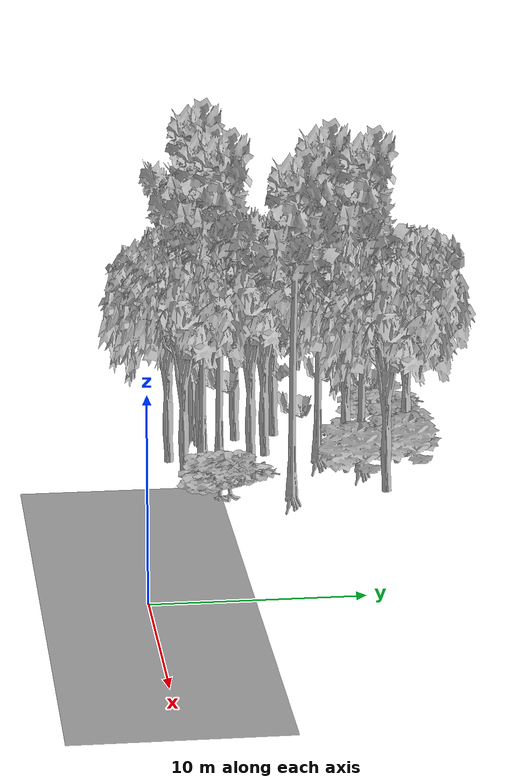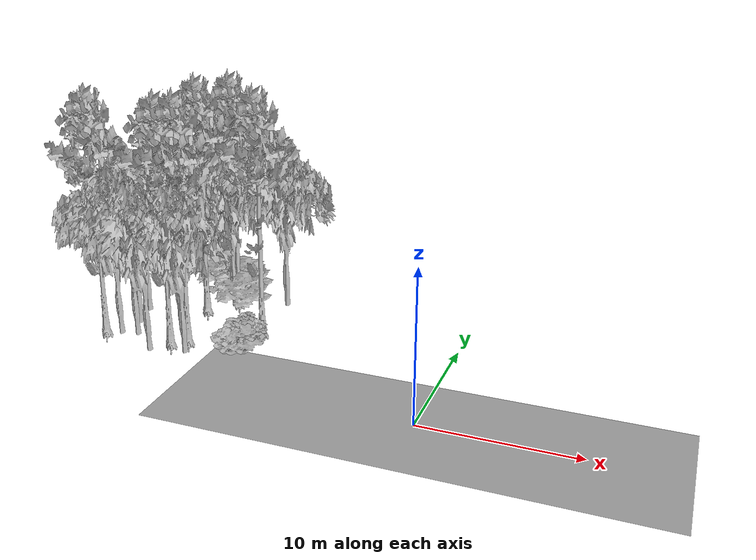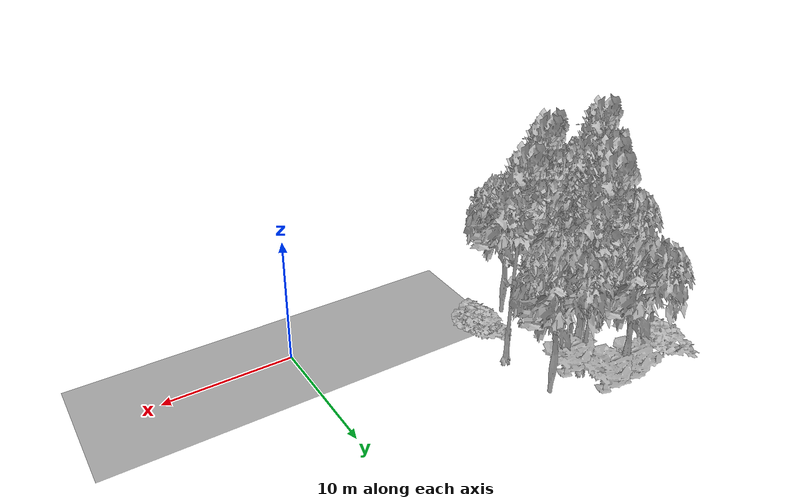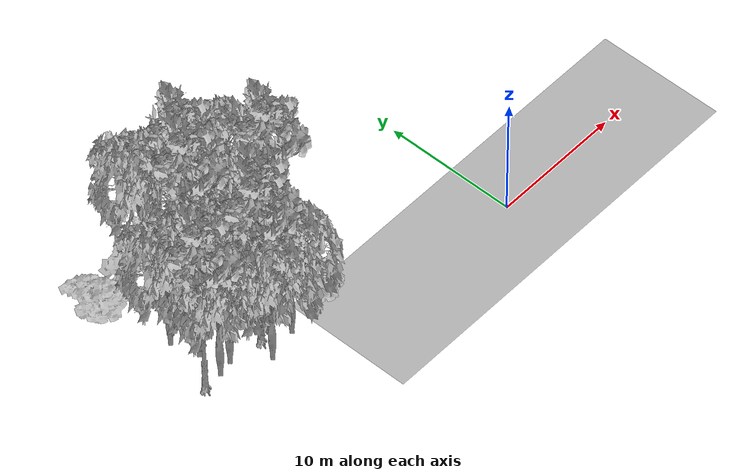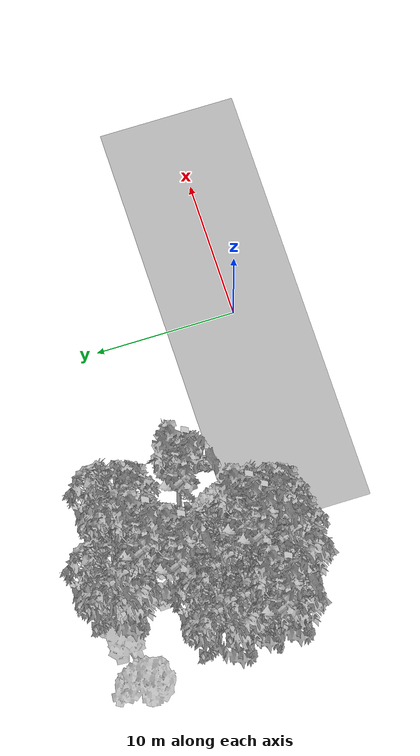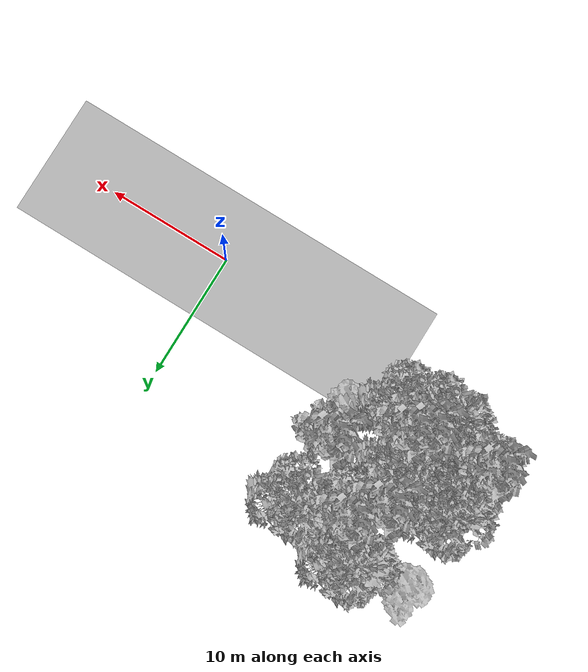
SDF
<sdf version="1.7">
 <world name="default">
  <model name="ground_plane">
   <static>1</static>
   <link name="link">
    <collision name="collision">
     <pose>-50 0 0 0 -0 0</pose>
     <geometry><plane><normal>0 0 1</normal><size>100 100</size></plane></geometry>
     <surface><contact><ode><min_depth>0.01</min_depth><max_vel>0</max_vel></ode></contact></surface>
    </collision>
    <visual name="grass">
     <cast_shadows>0</cast_shadows>
     <geometry>
      <mesh>
       <scale>0.5814285714285714 0.18142857142857144 0.1</scale>
       <uri>file://grass_plane/meshes/grass_plane.dae</uri>
      </mesh>
     </geometry>
    </visual>
   </link>
  </model>
  <model name="Tree 10">
   <static>1</static>
   <pose>-19.246089039979065 6.908874338125006 0 1.57079 -0 0</pose>
   <link name="link">
    <collision name="collision">
     <geometry><mesh><scale>3.5 5 3.5</scale><uri>model://tree_2/meshes/tree_2.obj</uri></mesh></geometry>
    </collision>
    <visual name="visual">
     <geometry><mesh><scale>3.5 5 3.5</scale><uri>model://tree_2/meshes/tree_2.obj</uri></mesh></geometry>
    </visual>
   </link>
  </model>
  <model name="Tree 12">
   <static>1</static>
   <pose>-18.077300655426992 5.200777059565873 0 1.57079 -0 0</pose>
   <link name="link">
    <collision name="collision">
     <geometry><mesh><scale>3.5 5 3.5</scale><uri>model://tree_9/meshes/tree_9.obj</uri></mesh></geometry>
    </collision>
    <visual name="visual">
     <geometry><mesh><scale>3.5 5 3.5</scale><uri>model://tree_9/meshes/tree_9.obj</uri></mesh></geometry>
    </visual>
   </link>
  </model>
  <model name="Tree 29">
   <static>1</static>
   <pose>-22.807019266591308 6.473514083245718 0 1.57079 -0 0</pose>
   <link name="link">
    <collision name="collision">
     <geometry><mesh><scale>3.5 5 3.5</scale><uri>model://tree_2/meshes/tree_2.obj</uri></mesh></geometry>
    </collision>
    <visual name="visual">
     <geometry><mesh><scale>3.5 5 3.5</scale><uri>model://tree_2/meshes/tree_2.obj</uri></mesh></geometry>
    </visual>
   </link>
  </model>
  <model name="Tree 62">
   <static>1</static>
   <pose>-19.33313289067358 14.804902407971447 0 1.57079 -0 0</pose>
   <link name="link">
    <collision name="collision">
     <geometry><mesh><scale>3.5 5 3.5</scale><uri>model://tree_2/meshes/tree_2.obj</uri></mesh></geometry>
    </collision>
    <visual name="visual">
     <geometry><mesh><scale>3.5 5 3.5</scale><uri>model://tree_2/meshes/tree_2.obj</uri></mesh></geometry>
    </visual>
   </link>
  </model>
  <model name="Tree 144">
   <static>1</static>
   <pose>-17.37646419418626 3.3595723735455714 0 1.57079 -0 0</pose>
   <link name="link">
    <collision name="collision">
     <geometry><mesh><scale>3.5 5 3.5</scale><uri>model://tree_2/meshes/tree_2.obj</uri></mesh></geometry>
    </collision>
    <visual name="visual">
     <geometry><mesh><scale>3.5 5 3.5</scale><uri>model://tree_2/meshes/tree_2.obj</uri></mesh></geometry>
    </visual>
   </link>
  </model>
  <model name="Tree 214">
   <static>1</static>
   <pose>-21.878900286448566 4.6263997090878135 0 1.57079 -0 0</pose>
   <link name="link">
    <collision name="collision">
     <geometry><mesh><scale>3.5 5 3.5</scale><uri>model://tree_2/meshes/tree_2.obj</uri></mesh></geometry>
    </collision>
    <visual name="visual">
     <geometry><mesh><scale>3.5 5 3.5</scale><uri>model://tree_2/meshes/tree_2.obj</uri></mesh></geometry>
    </visual>
   </link>
  </model>
  <model name="Tree 225">
   <static>1</static>
   <pose>-23.040403793343096 4.380710514267442 0 1.57079 -0 0</pose>
   <link name="link">
    <collision name="collision">
     <geometry><mesh><scale>3.5 5 3.5</scale><uri>model://tree_2/meshes/tree_2.obj</uri></mesh></geometry>
    </collision>
    <visual name="visual">
     <geometry><mesh><scale>3.5 5 3.5</scale><uri>model://tree_2/meshes/tree_2.obj</uri></mesh></geometry>
    </visual>
   </link>
  </model>
  <model name="Tree 307">
   <static>1</static>
   <pose>-20.243097478200834 7.710136055642973 0 1.57079 -0 0</pose>
   <link name="link">
    <collision name="collision">
     <geometry><mesh><scale>3.5 5 3.5</scale><uri>model://tree_2/meshes/tree_2.obj</uri></mesh></geometry>
    </collision>
    <visual name="visual">
     <geometry><mesh><scale>3.5 5 3.5</scale><uri>model://tree_2/meshes/tree_2.obj</uri></mesh></geometry>
    </visual>
   </link>
  </model>
  <model name="Tree 338">
   <static>1</static>
   <pose>-14.064875004269858 5.297692708892356 0 1.57079 -0 0</pose>
   <link name="link">
    <collision name="collision">
     <geometry><mesh><scale>4 2.5 4</scale><uri>model://tree_1/meshes/tree_1.obj</uri></mesh></geometry>
    </collision>
    <visual name="visual">
     <geometry><mesh><scale>4 2.5 4</scale><uri>model://tree_1/meshes/tree_1.obj</uri></mesh></geometry>
    </visual>
   </link>
  </model>
  <model name="Tree 358">
   <static>1</static>
   <pose>-14.12893316378159 13.02405922016634 0 1.57079 -0 0</pose>
   <link name="link">
    <collision name="collision">
     <geometry><mesh><scale>3.5 5 3.5</scale><uri>model://tree_2/meshes/tree_2.obj</uri></mesh></geometry>
    </collision>
    <visual name="visual">
     <geometry><mesh><scale>3.5 5 3.5</scale><uri>model://tree_2/meshes/tree_2.obj</uri></mesh></geometry>
    </visual>
   </link>
  </model>
  <model name="Tree 380">
   <static>1</static>
   <pose>-17.731687267596318 12.308768992292773 0 1.57079 -0 0</pose>
   <link name="link">
    <collision name="collision">
     <geometry><mesh><scale>3.5 5 3.5</scale><uri>model://tree_9/meshes/tree_9.obj</uri></mesh></geometry>
    </collision>
    <visual name="visual">
     <geometry><mesh><scale>3.5 5 3.5</scale><uri>model://tree_9/meshes/tree_9.obj</uri></mesh></geometry>
    </visual>
   </link>
  </model>
  <model name="Tree 400">
   <static>1</static>
   <pose>-18.589228251138103 14.248098175950698 0 1.57079 -0 0</pose>
   <link name="link">
    <collision name="collision">
     <geometry><mesh><scale>3 2 3</scale><uri>model://tree_3/meshes/tree_3.obj</uri></mesh></geometry>
    </collision>
    <visual name="visual">
     <geometry><mesh><scale>3 2 3</scale><uri>model://tree_3/meshes/tree_3.obj</uri></mesh></geometry>
    </visual>
   </link>
  </model>
  <model name="Tree 402">
   <static>1</static>
   <pose>-13.842568973873256 8.318353828979884 0 1.57079 -0 0</pose>
   <link name="link">
    <collision name="collision">
     <geometry><mesh><scale>3.5 5 3.5</scale><uri>model://tree_9/meshes/tree_9.obj</uri></mesh></geometry>
    </collision>
    <visual name="visual">
     <geometry><mesh><scale>3.5 5 3.5</scale><uri>model://tree_9/meshes/tree_9.obj</uri></mesh></geometry>
    </visual>
   </link>
  </model>
  <model name="Tree 403">
   <static>1</static>
   <pose>-19.04758314244559 4.460863025513174 0 1.57079 -0 0</pose>
   <link name="link">
    <collision name="collision">
     <geometry><mesh><scale>3.5 5 3.5</scale><uri>model://tree_9/meshes/tree_9.obj</uri></mesh></geometry>
    </collision>
    <visual name="visual">
     <geometry><mesh><scale>3.5 5 3.5</scale><uri>model://tree_9/meshes/tree_9.obj</uri></mesh></geometry>
    </visual>
   </link>
  </model>
  <model name="Tree 408">
   <static>1</static>
   <pose>-19.804228383361107 2.804596104694564 0 1.57079 -0 0</pose>
   <link name="link">
    <collision name="collision">
     <geometry><mesh><scale>3.5 5 3.5</scale><uri>model://tree_2/meshes/tree_2.obj</uri></mesh></geometry>
    </collision>
    <visual name="visual">
     <geometry><mesh><scale>3.5 5 3.5</scale><uri>model://tree_2/meshes/tree_2.obj</uri></mesh></geometry>
    </visual>
   </link>
  </model>
  <model name="Tree 415">
   <static>1</static>
   <pose>-24.54853024442084 14.1001889948259 0 1.57079 -0 0</pose>
   <link name="link">
    <collision name="collision">
     <geometry><mesh><scale>4 2.5 4</scale><uri>model://tree_1/meshes/tree_1.obj</uri></mesh></geometry>
    </collision>
    <visual name="visual">
     <geometry><mesh><scale>4 2.5 4</scale><uri>model://tree_1/meshes/tree_1.obj</uri></mesh></geometry>
    </visual>
   </link>
  </model>
  <model name="Tree 434">
   <static>1</static>
   <pose>-17.437883387688327 11.502812138632642 0 1.57079 -0 0</pose>
   <link name="link">
    <collision name="collision">
     <geometry><mesh><scale>3 2 3</scale><uri>model://tree_3/meshes/tree_3.obj</uri></mesh></geometry>
    </collision>
    <visual name="visual">
     <geometry><mesh><scale>3 2 3</scale><uri>model://tree_3/meshes/tree_3.obj</uri></mesh></geometry>
    </visual>
   </link>
  </model>
  <model name="Tree 437">
   <static>1</static>
   <pose>-17.7738085154448 11.516139168114758 0 1.57079 -0 0</pose>
   <link name="link">
    <collision name="collision">
     <geometry><mesh><scale>3.5 5 3.5</scale><uri>model://tree_2/meshes/tree_2.obj</uri></mesh></geometry>
    </collision>
    <visual name="visual">
     <geometry><mesh><scale>3.5 5 3.5</scale><uri>model://tree_2/meshes/tree_2.obj</uri></mesh></geometry>
    </visual>
   </link>
  </model>
  <model name="Tree 443">
   <static>1</static>
   <pose>-13.891948910440988 4.796925183667355 0 1.57079 -0 0</pose>
   <link name="link">
    <collision name="collision">
     <geometry><mesh><scale>4 2.5 4</scale><uri>model://tree_1/meshes/tree_1.obj</uri></mesh></geometry>
    </collision>
    <visual name="visual">
     <geometry><mesh><scale>4 2.5 4</scale><uri>model://tree_1/meshes/tree_1.obj</uri></mesh></geometry>
    </visual>
   </link>
  </model>
  <model name="Tree 468">
   <static>1</static>
   <pose>-19.364420497430356 10.328259835045866 0 1.57079 -0 0</pose>
   <link name="link">
    <collision name="collision">
     <geometry><mesh><scale>3.5 5 3.5</scale><uri>model://tree_9/meshes/tree_9.obj</uri></mesh></geometry>
    </collision>
    <visual name="visual">
     <geometry><mesh><scale>3.5 5 3.5</scale><uri>model://tree_9/meshes/tree_9.obj</uri></mesh></geometry>
    </visual>
   </link>
  </model>
  <model name="Tree 485">
   <static>1</static>
   <pose>-23.32968926610514 8.528859625782019 0 1.57079 -0 0</pose>
   <link name="link">
    <collision name="collision">
     <geometry><mesh><scale>3.5 5 3.5</scale><uri>model://tree_2/meshes/tree_2.obj</uri></mesh></geometry>
    </collision>
    <visual name="visual">
     <geometry><mesh><scale>3.5 5 3.5</scale><uri>model://tree_2/meshes/tree_2.obj</uri></mesh></geometry>
    </visual>
   </link>
  </model>
  <model name="Tree 490">
   <static>1</static>
   <pose>-24.31465208935538 4.481417052989521 0 1.57079 -0 0</pose>
   <link name="link">
    <collision name="collision">
     <geometry><mesh><scale>3.5 5 3.5</scale><uri>model://tree_9/meshes/tree_9.obj</uri></mesh></geometry>
    </collision>
    <visual name="visual">
     <geometry><mesh><scale>3.5 5 3.5</scale><uri>model://tree_9/meshes/tree_9.obj</uri></mesh></geometry>
    </visual>
   </link>
  </model>
  <model name="Tree 522">
   <static>1</static>
   <pose>-20.51435398963681 14.290422938660555 0 1.57079 -0 0</pose>
   <link name="link">
    <collision name="collision">
     <geometry><mesh><scale>3 2 3</scale><uri>model://tree_3/meshes/tree_3.obj</uri></mesh></geometry>
    </collision>
    <visual name="visual">
     <geometry><mesh><scale>3 2 3</scale><uri>model://tree_3/meshes/tree_3.obj</uri></mesh></geometry>
    </visual>
   </link>
  </model>
 </world>
</sdf>
